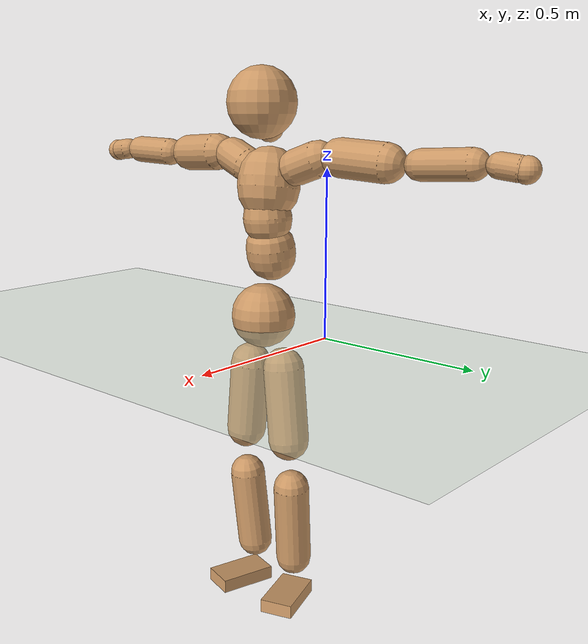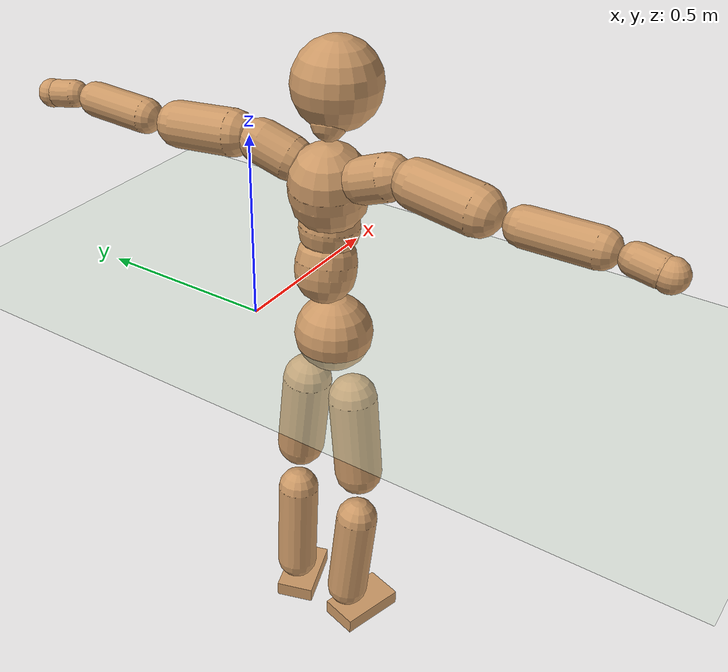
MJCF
<mujoco model="humanoid">
  <compiler coordinate="local"/>
  <default>
    <joint damping="0.0" armature="0.01" stiffness="0.0" limited="true"/>
    <geom conaffinity="1" condim="3" contype="7" margin="0.001" rgba="0.8 0.6 .4 1"/>
  </default>
  <asset>
    <texture type="skybox" builtin="gradient" rgb1=".4 .5 .6" rgb2="0 0 0" width="100" height="100"/>
    <texture builtin="flat" height="1278" mark="cross" markrgb="1 1 1" name="texgeom" random="0.01" rgb1="0.8 0.6 0.4" rgb2="0.8 0.6 0.4" type="cube" width="127"/>
    <texture builtin="checker" height="100" name="texplane" rgb1="0 0 0" rgb2="0.8 0.8 0.8" type="2d" width="100"/>
    <material name="MatPlane" reflectance="0.5" shininess="1" specular="1" texrepeat="60 60" texture="texplane"/>
    <material name="geom" texture="texgeom" texuniform="true"/>
  </asset>
  <worldbody>
    <light cutoff="100" diffuse="1 1 1" dir="-0 0 -1.3" directional="true" exponent="1" pos="0 0 1.3" specular=".1 .1 .1"/>
    <geom conaffinity="1" condim="3" name="floor" pos="0 0 0" rgba="0.8 0.9 0.8 1" size="100 100 .2" type="plane" material="MatPlane"/>
    <body name="Pelvis" pos="-0.0024 -0.2533 0.0318">
      <freejoint name="Pelvis"/>
      <geom type="sphere" contype="1" conaffinity="1" density="500" size="0.1011" pos="0.0000 0.0000 0.0000" name="Pelvis"/>
      <body name="L_Hip" pos="-0.0177 0.0616 -0.0852">
        <joint name="L_Hip_x" type="hinge" pos="0 0 0" axis="1 0 0" stiffness="800" damping="80" armature="0.02" range="-180.0000 180.0000"/>
        <joint name="L_Hip_y" type="hinge" pos="0 0 0" axis="0 1 0" stiffness="800" damping="80" armature="0.02" range="-180.0000 180.0000"/>
        <joint name="L_Hip_z" type="hinge" pos="0 0 0" axis="0 0 1" stiffness="800" damping="80" armature="0.02" range="-180.0000 180.0000"/>
        <geom type="capsule" contype="1" conaffinity="1" density="500" fromto="0.0016 0.0089 -0.0789 0.0064 0.0356 -0.3157" size="0.0652" name="L_Hip"/>
        <body name="L_Knee" pos="0.008 0.0445 -0.3946">
          <joint name="L_Knee_x" type="hinge" pos="0 0 0" axis="1 0 0" stiffness="800" damping="80" armature="0.02" range="-180.0000 180.0000"/>
          <joint name="L_Knee_y" type="hinge" pos="0 0 0" axis="0 1 0" stiffness="800" damping="80" armature="0.02" range="-180.0000 180.0000"/>
          <joint name="L_Knee_z" type="hinge" pos="0 0 0" axis="0 0 1" stiffness="800" damping="80" armature="0.02" range="-180.0000 180.0000"/>
          <geom type="capsule" contype="1" conaffinity="1" density="500" fromto="-0.0078 -0.0031 -0.0876 -0.0313 -0.0123 -0.3505" size="0.0577" name="L_Knee"/>
          <body name="L_Ankle" pos="-0.0391 -0.0154 -0.4381">
            <joint name="L_Ankle_x" type="hinge" pos="0 0 0" axis="1 0 0" stiffness="800" damping="80" armature="0.02" range="-180.0000 180.0000"/>
            <joint name="L_Ankle_y" type="hinge" pos="0 0 0" axis="0 1 0" stiffness="800" damping="80" armature="0.02" range="-180.0000 180.0000"/>
            <joint name="L_Ankle_z" type="hinge" pos="0 0 0" axis="0 0 1" stiffness="800" damping="80" armature="0.02" range="-180.0000 180.0000"/>
            <geom type="box" contype="1" conaffinity="1" density="500" pos="0.0626 0.0208 -0.0310" size="0.0915 0.0535 0.0222" quat="0.9871 0.0000 0.0000 0.1599" name="L_Ankle"/>
            <body name="L_Toe" pos="0.1252 0.0417 -0.0621">
              <joint name="L_Toe_x" type="hinge" pos="0 0 0" axis="1 0 0" stiffness="500" damping="50" armature="0.02" range="-180.0000 180.0000"/>
              <joint name="L_Toe_y" type="hinge" pos="0 0 0" axis="0 1 0" stiffness="500" damping="50" armature="0.02" range="-180.0000 180.0000"/>
              <joint name="L_Toe_z" type="hinge" pos="0 0 0" axis="0 0 1" stiffness="500" damping="50" armature="0.02" range="-180.0000 180.0000"/>
              <geom type="box" contype="1" conaffinity="1" density="500" pos="0.0000 0.0000 0.0303" size="0.0011 0.0026 0.0011" quat="0.9864 0.0000 0.0000 0.1646" name="L_Toe"/>
            </body>
          </body>
        </body>
      </body>
      <body name="R_Hip" pos="-0.0137 -0.063 -0.0932">
        <joint name="R_Hip_x" type="hinge" pos="0 0 0" axis="1 0 0" stiffness="800" damping="80" armature="0.02" range="-180.0000 180.0000"/>
        <joint name="R_Hip_y" type="hinge" pos="0 0 0" axis="0 1 0" stiffness="800" damping="80" armature="0.02" range="-180.0000 180.0000"/>
        <joint name="R_Hip_z" type="hinge" pos="0 0 0" axis="0 0 1" stiffness="800" damping="80" armature="0.02" range="-180.0000 180.0000"/>
        <geom type="capsule" contype="1" conaffinity="1" density="500" fromto="-0.0011 -0.0089 -0.0785 -0.0042 -0.0354 -0.3140" size="0.0646" name="R_Hip"/>
        <body name="R_Knee" pos="-0.0053 -0.0443 -0.3925">
          <joint name="R_Knee_x" type="hinge" pos="0 0 0" axis="1 0 0" stiffness="800" damping="80" armature="0.02" range="-180.0000 180.0000"/>
          <joint name="R_Knee_y" type="hinge" pos="0 0 0" axis="0 1 0" stiffness="800" damping="80" armature="0.02" range="-180.0000 180.0000"/>
          <joint name="R_Knee_z" type="hinge" pos="0 0 0" axis="0 0 1" stiffness="800" damping="80" armature="0.02" range="-180.0000 180.0000"/>
          <geom type="capsule" contype="1" conaffinity="1" density="500" fromto="-0.0073 0.0039 -0.0863 -0.0292 0.0157 -0.3452" size="0.0577" name="R_Knee"/>
          <body name="R_Ankle" pos="-0.0365 0.0196 -0.4315">
            <joint name="R_Ankle_x" type="hinge" pos="0 0 0" axis="1 0 0" stiffness="800" damping="80" armature="0.02" range="-180.0000 180.0000"/>
            <joint name="R_Ankle_y" type="hinge" pos="0 0 0" axis="0 1 0" stiffness="800" damping="80" armature="0.02" range="-180.0000 180.0000"/>
            <joint name="R_Ankle_z" type="hinge" pos="0 0 0" axis="0 0 1" stiffness="800" damping="80" armature="0.02" range="-180.0000 180.0000"/>
            <geom type="box" contype="1" conaffinity="1" density="500" pos="0.0668 -0.0186 -0.0316" size="0.0929 0.053 0.0223" quat="0.9908 0.0000 0.0000 -0.1352" name="R_Ankle"/>
            <body name="R_Toe" pos="0.1337 -0.0372 -0.0632">
              <joint name="R_Toe_x" type="hinge" pos="0 0 0" axis="1 0 0" stiffness="500" damping="50" armature="0.02" range="-180.0000 180.0000"/>
              <joint name="R_Toe_y" type="hinge" pos="0 0 0" axis="0 1 0" stiffness="500" damping="50" armature="0.02" range="-180.0000 180.0000"/>
              <joint name="R_Toe_z" type="hinge" pos="0 0 0" axis="0 0 1" stiffness="500" damping="50" armature="0.02" range="-180.0000 180.0000"/>
              <geom type="box" contype="1" conaffinity="1" density="500" pos="0.0000 0.0000 0.0317" size="0.0011 0.0026 0.0011" quat="0.9920 0.0000 0.0000 -0.1265" name="R_Toe"/>
            </body>
          </body>
        </body>
      </body>
      <body name="Torso" pos="-0.0419 0.0045 0.1292">
        <joint name="Torso_x" type="hinge" pos="0 0 0" axis="1 0 0" stiffness="1000" damping="100" armature="0.02" range="-180.0000 180.0000"/>
        <joint name="Torso_y" type="hinge" pos="0 0 0" axis="0 1 0" stiffness="1000" damping="100" armature="0.02" range="-180.0000 180.0000"/>
        <joint name="Torso_z" type="hinge" pos="0 0 0" axis="0 0 1" stiffness="1000" damping="100" armature="0.02" range="-180.0000 180.0000"/>
        <geom type="capsule" contype="1" conaffinity="1" density="500" fromto="0.0165 0.0029 0.0868 0.0110 0.0019 0.0579" size="0.077097" name="Torso"/>
        <body name="Spine" pos="0.0276 0.0048 0.1446">
          <joint name="Spine_x" type="hinge" pos="0 0 0" axis="1 0 0" stiffness="1000" damping="100" armature="0.02" range="-180.0000 180.0000"/>
          <joint name="Spine_y" type="hinge" pos="0 0 0" axis="0 1 0" stiffness="1000" damping="100" armature="0.02" range="-180.0000 180.0000"/>
          <joint name="Spine_z" type="hinge" pos="0 0 0" axis="0 0 1" stiffness="1000" damping="100" armature="0.02" range="-180.0000 180.0000"/>
          <geom type="capsule" contype="1" conaffinity="1" density="500" fromto="0.0019 -0.0014 0.0356 0.0013 -0.0010 0.0237" size="0.075702" name="Spine"/>
          <body name="Chest" pos="0.0032 -0.0024 0.0593">
            <joint name="Chest_x" type="hinge" pos="0 0 0" axis="1 0 0" stiffness="1000" damping="100" armature="0.02" range="-180.0000 180.0000"/>
            <joint name="Chest_y" type="hinge" pos="0 0 0" axis="0 1 0" stiffness="1000" damping="100" armature="0.02" range="-180.0000 180.0000"/>
            <joint name="Chest_z" type="hinge" pos="0 0 0" axis="0 0 1" stiffness="1000" damping="100" armature="0.02" range="-180.0000 180.0000"/>
            <geom type="capsule" contype="1" conaffinity="1" density="500" fromto="-0.0162 -0.0049 0.0915 -0.0108 -0.0032 0.0610" size="0.097185" name="Chest"/>
            <body name="Neck" pos="-0.0363 -0.0133 0.2222">
              <joint name="Neck_x" type="hinge" pos="0 0 0" axis="1 0 0" stiffness="500" damping="50" armature="0.02" range="-180.0000 180.0000"/>
              <joint name="Neck_y" type="hinge" pos="0 0 0" axis="0 1 0" stiffness="500" damping="50" armature="0.02" range="-180.0000 180.0000"/>
              <joint name="Neck_z" type="hinge" pos="0 0 0" axis="0 0 1" stiffness="500" damping="50" armature="0.02" range="-180.0000 180.0000"/>
              <geom type="capsule" contype="1" conaffinity="1" density="500" fromto="0.0105 0.0021 0.0184 0.0420 0.0084 0.0737" size="0.043152" name="Neck"/>
              <body name="Head" pos="0.0525 0.0104 0.0921">
                <joint name="Head_x" type="hinge" pos="0 0 0" axis="1 0 0" stiffness="500" damping="50" armature="0.02" range="-180.0000 180.0000"/>
                <joint name="Head_y" type="hinge" pos="0 0 0" axis="0 1 0" stiffness="500" damping="50" armature="0.02" range="-180.0000 180.0000"/>
                <joint name="Head_z" type="hinge" pos="0 0 0" axis="0 0 1" stiffness="500" damping="50" armature="0.02" range="-180.0000 180.0000"/>
                <geom type="sphere" contype="1" conaffinity="1" density="500" size="0.1069" pos="0.0000 0.0000 0.0000" name="Head"/>
              </body>
            </body>
            <body name="L_Thorax" pos="-0.0196 0.0723 0.1187">
              <joint name="L_Thorax_x" type="hinge" pos="0 0 0" axis="1 0 0" stiffness="500" damping="50" armature="0.02" range="-180.0000 180.0000"/>
              <joint name="L_Thorax_y" type="hinge" pos="0 0 0" axis="0 1 0" stiffness="500" damping="50" armature="0.02" range="-180.0000 180.0000"/>
              <joint name="L_Thorax_z" type="hinge" pos="0 0 0" axis="0 0 1" stiffness="500" damping="50" armature="0.02" range="-180.0000 180.0000"/>
              <geom type="capsule" contype="1" conaffinity="1" density="500" fromto="-0.0039 0.0248 0.0091 -0.0155 0.0991 0.0363" size="0.0547" name="L_Thorax"/>
              <body name="L_Shoulder" pos="-0.0194 0.1239 0.0454">
                <joint name="L_Shoulder_x" type="hinge" pos="0 0 0" axis="1 0 0" stiffness="500" damping="50" armature="0.02" range="-720.0000 720.0000"/>
                <joint name="L_Shoulder_y" type="hinge" pos="0 0 0" axis="0 1 0" stiffness="500" damping="50" armature="0.02" range="-720.0000 720.0000"/>
                <joint name="L_Shoulder_z" type="hinge" pos="0 0 0" axis="0 0 1" stiffness="500" damping="50" armature="0.02" range="-720.0000 720.0000"/>
                <geom type="capsule" contype="1" conaffinity="1" density="500" fromto="-0.0049 0.0511 -0.0031 -0.0194 0.2045 -0.0126" size="0.0574" name="L_Shoulder"/>
                <body name="L_Elbow" pos="-0.0243 0.2556 -0.0157">
                  <joint name="L_Elbow_x" type="hinge" pos="0 0 0" axis="1 0 0" stiffness="500" damping="50" armature="0.02" range="-720.0000 720.0000"/>
                  <joint name="L_Elbow_y" type="hinge" pos="0 0 0" axis="0 1 0" stiffness="500" damping="50" armature="0.02" range="-720.0000 720.0000"/>
                  <joint name="L_Elbow_z" type="hinge" pos="0 0 0" axis="0 0 1" stiffness="500" damping="50" armature="0.02" range="-720.0000 720.0000"/>
                  <geom type="capsule" contype="1" conaffinity="1" density="500" fromto="-0.0013 0.0537 0.0027 -0.0051 0.2147 0.0108" size="0.0441" name="L_Elbow"/>
                  <body name="L_Wrist" pos="-0.0064 0.2684 0.0135">
                    <joint name="L_Wrist_x" type="hinge" pos="0 0 0" axis="1 0 0" stiffness="300" damping="30" armature="0.02" range="-180.0000 180.0000"/>
                    <joint name="L_Wrist_y" type="hinge" pos="0 0 0" axis="0 1 0" stiffness="300" damping="30" armature="0.02" range="-180.0000 180.0000"/>
                    <joint name="L_Wrist_z" type="hinge" pos="0 0 0" axis="0 0 1" stiffness="300" damping="30" armature="0.02" range="-180.0000 180.0000"/>
                    <geom type="capsule" contype="1" conaffinity="1" density="500" fromto="-0.0032 0.0176 -0.0022 -0.0126 0.0705 -0.0088" size="0.0349" name="L_Wrist"/>
                    <body name="L_Hand" pos="-0.0158 0.0882 -0.0109">
                      <joint name="L_Hand_x" type="hinge" pos="0 0 0" axis="1 0 0" stiffness="300" damping="30" armature="0.02" range="-180.0000 180.0000"/>
                      <joint name="L_Hand_y" type="hinge" pos="0 0 0" axis="0 1 0" stiffness="300" damping="30" armature="0.02" range="-180.0000 180.0000"/>
                      <joint name="L_Hand_z" type="hinge" pos="0 0 0" axis="0 0 1" stiffness="300" damping="30" armature="0.02" range="-180.0000 180.0000"/>
                      <geom type="sphere" contype="1" conaffinity="1" density="500" size="0.0363" pos="0.0000 0.0000 0.0000" name="L_Hand"/>
                    </body>
                  </body>
                </body>
              </body>
            </body>
            <body name="R_Thorax" pos="-0.0253 -0.0834 0.1167">
              <joint name="R_Thorax_x" type="hinge" pos="0 0 0" axis="1 0 0" stiffness="500" damping="50" armature="0.02" range="-180.0000 180.0000"/>
              <joint name="R_Thorax_y" type="hinge" pos="0 0 0" axis="0 1 0" stiffness="500" damping="50" armature="0.02" range="-180.0000 180.0000"/>
              <joint name="R_Thorax_z" type="hinge" pos="0 0 0" axis="0 0 1" stiffness="500" damping="50" armature="0.02" range="-180.0000 180.0000"/>
              <geom type="capsule" contype="1" conaffinity="1" density="500" fromto="-0.0018 -0.0229 0.0094 -0.0071 -0.0916 0.0378" size="0.0547" name="R_Thorax"/>
              <body name="R_Shoulder" pos="-0.0088 -0.1145 0.0472">
                <joint name="R_Shoulder_x" type="hinge" pos="0 0 0" axis="1 0 0" stiffness="500" damping="50" armature="0.02" range="-720.0000 720.0000"/>
                <joint name="R_Shoulder_y" type="hinge" pos="0 0 0" axis="0 1 0" stiffness="500" damping="50" armature="0.02" range="-720.0000 720.0000"/>
                <joint name="R_Shoulder_z" type="hinge" pos="0 0 0" axis="0 0 1" stiffness="500" damping="50" armature="0.02" range="-720.0000 720.0000"/>
                <geom type="capsule" contype="1" conaffinity="1" density="500" fromto="-0.0067 -0.0522 -0.0029 -0.0268 -0.2089 -0.0116" size="0.058" name="R_Shoulder"/>
                <body name="R_Elbow" pos="-0.0335 -0.2611 -0.0145">
                  <joint name="R_Elbow_x" type="hinge" pos="0 0 0" axis="1 0 0" stiffness="500" damping="50" armature="0.02" range="-720.0000 720.0000"/>
                  <joint name="R_Elbow_y" type="hinge" pos="0 0 0" axis="0 1 0" stiffness="500" damping="50" armature="0.02" range="-720.0000 720.0000"/>
                  <joint name="R_Elbow_z" type="hinge" pos="0 0 0" axis="0 0 1" stiffness="500" damping="50" armature="0.02" range="-720.0000 720.0000"/>
                  <geom type="capsule" contype="1" conaffinity="1" density="500" fromto="-0.0012 -0.0542 0.0012 -0.0047 -0.2168 0.0048" size="0.0445" name="R_Elbow"/>
                  <body name="R_Wrist" pos="-0.0058 -0.271 0.006">
                    <joint name="R_Wrist_x" type="hinge" pos="0 0 0" axis="1 0 0" stiffness="300" damping="30" armature="0.02" range="-180.0000 180.0000"/>
                    <joint name="R_Wrist_y" type="hinge" pos="0 0 0" axis="0 1 0" stiffness="300" damping="30" armature="0.02" range="-180.0000 180.0000"/>
                    <joint name="R_Wrist_z" type="hinge" pos="0 0 0" axis="0 0 1" stiffness="300" damping="30" armature="0.02" range="-180.0000 180.0000"/>
                    <geom type="capsule" contype="1" conaffinity="1" density="500" fromto="-0.0020 -0.0180 -0.0018 -0.0081 -0.0721 -0.0070" size="0.0354" name="R_Wrist"/>
                    <body name="R_Hand" pos="-0.0102 -0.0902 -0.0088">
                      <joint name="R_Hand_x" type="hinge" pos="0 0 0" axis="1 0 0" stiffness="300" damping="30" armature="0.02" range="-180.0000 180.0000"/>
                      <joint name="R_Hand_y" type="hinge" pos="0 0 0" axis="0 1 0" stiffness="300" damping="30" armature="0.02" range="-180.0000 180.0000"/>
                      <joint name="R_Hand_z" type="hinge" pos="0 0 0" axis="0 0 1" stiffness="300" damping="30" armature="0.02" range="-180.0000 180.0000"/>
                      <geom type="sphere" contype="1" conaffinity="1" density="500" size="0.0367" pos="0.0000 0.0000 0.0000" name="R_Hand"/>
                    </body>
                  </body>
                </body>
              </body>
            </body>
          </body>
        </body>
      </body>
    </body>
  </worldbody>
  <actuator>
    <motor name="L_Hip_x" joint="L_Hip_x" gear="500"/>
    <motor name="L_Hip_y" joint="L_Hip_y" gear="500"/>
    <motor name="L_Hip_z" joint="L_Hip_z" gear="500"/>
    <motor name="L_Knee_x" joint="L_Knee_x" gear="500"/>
    <motor name="L_Knee_y" joint="L_Knee_y" gear="500"/>
    <motor name="L_Knee_z" joint="L_Knee_z" gear="500"/>
    <motor name="L_Ankle_x" joint="L_Ankle_x" gear="500"/>
    <motor name="L_Ankle_y" joint="L_Ankle_y" gear="500"/>
    <motor name="L_Ankle_z" joint="L_Ankle_z" gear="500"/>
    <motor name="L_Toe_x" joint="L_Toe_x" gear="500"/>
    <motor name="L_Toe_y" joint="L_Toe_y" gear="500"/>
    <motor name="L_Toe_z" joint="L_Toe_z" gear="500"/>
    <motor name="R_Hip_x" joint="R_Hip_x" gear="500"/>
    <motor name="R_Hip_y" joint="R_Hip_y" gear="500"/>
    <motor name="R_Hip_z" joint="R_Hip_z" gear="500"/>
    <motor name="R_Knee_x" joint="R_Knee_x" gear="500"/>
    <motor name="R_Knee_y" joint="R_Knee_y" gear="500"/>
    <motor name="R_Knee_z" joint="R_Knee_z" gear="500"/>
    <motor name="R_Ankle_x" joint="R_Ankle_x" gear="500"/>
    <motor name="R_Ankle_y" joint="R_Ankle_y" gear="500"/>
    <motor name="R_Ankle_z" joint="R_Ankle_z" gear="500"/>
    <motor name="R_Toe_x" joint="R_Toe_x" gear="500"/>
    <motor name="R_Toe_y" joint="R_Toe_y" gear="500"/>
    <motor name="R_Toe_z" joint="R_Toe_z" gear="500"/>
    <motor name="Torso_x" joint="Torso_x" gear="500"/>
    <motor name="Torso_y" joint="Torso_y" gear="500"/>
    <motor name="Torso_z" joint="Torso_z" gear="500"/>
    <motor name="Spine_x" joint="Spine_x" gear="500"/>
    <motor name="Spine_y" joint="Spine_y" gear="500"/>
    <motor name="Spine_z" joint="Spine_z" gear="500"/>
    <motor name="Chest_x" joint="Chest_x" gear="500"/>
    <motor name="Chest_y" joint="Chest_y" gear="500"/>
    <motor name="Chest_z" joint="Chest_z" gear="500"/>
    <motor name="Neck_x" joint="Neck_x" gear="500"/>
    <motor name="Neck_y" joint="Neck_y" gear="500"/>
    <motor name="Neck_z" joint="Neck_z" gear="500"/>
    <motor name="Head_x" joint="Head_x" gear="500"/>
    <motor name="Head_y" joint="Head_y" gear="500"/>
    <motor name="Head_z" joint="Head_z" gear="500"/>
    <motor name="L_Thorax_x" joint="L_Thorax_x" gear="500"/>
    <motor name="L_Thorax_y" joint="L_Thorax_y" gear="500"/>
    <motor name="L_Thorax_z" joint="L_Thorax_z" gear="500"/>
    <motor name="L_Shoulder_x" joint="L_Shoulder_x" gear="500"/>
    <motor name="L_Shoulder_y" joint="L_Shoulder_y" gear="500"/>
    <motor name="L_Shoulder_z" joint="L_Shoulder_z" gear="500"/>
    <motor name="L_Elbow_x" joint="L_Elbow_x" gear="500"/>
    <motor name="L_Elbow_y" joint="L_Elbow_y" gear="500"/>
    <motor name="L_Elbow_z" joint="L_Elbow_z" gear="500"/>
    <motor name="L_Wrist_x" joint="L_Wrist_x" gear="500"/>
    <motor name="L_Wrist_y" joint="L_Wrist_y" gear="500"/>
    <motor name="L_Wrist_z" joint="L_Wrist_z" gear="500"/>
    <motor name="L_Hand_x" joint="L_Hand_x" gear="500"/>
    <motor name="L_Hand_y" joint="L_Hand_y" gear="500"/>
    <motor name="L_Hand_z" joint="L_Hand_z" gear="500"/>
    <motor name="R_Thorax_x" joint="R_Thorax_x" gear="500"/>
    <motor name="R_Thorax_y" joint="R_Thorax_y" gear="500"/>
    <motor name="R_Thorax_z" joint="R_Thorax_z" gear="500"/>
    <motor name="R_Shoulder_x" joint="R_Shoulder_x" gear="500"/>
    <motor name="R_Shoulder_y" joint="R_Shoulder_y" gear="500"/>
    <motor name="R_Shoulder_z" joint="R_Shoulder_z" gear="500"/>
    <motor name="R_Elbow_x" joint="R_Elbow_x" gear="500"/>
    <motor name="R_Elbow_y" joint="R_Elbow_y" gear="500"/>
    <motor name="R_Elbow_z" joint="R_Elbow_z" gear="500"/>
    <motor name="R_Wrist_x" joint="R_Wrist_x" gear="500"/>
    <motor name="R_Wrist_y" joint="R_Wrist_y" gear="500"/>
    <motor name="R_Wrist_z" joint="R_Wrist_z" gear="500"/>
    <motor name="R_Hand_x" joint="R_Hand_x" gear="500"/>
    <motor name="R_Hand_y" joint="R_Hand_y" gear="500"/>
    <motor name="R_Hand_z" joint="R_Hand_z" gear="500"/>
  </actuator>
  <contact>
    <exclude body1="Torso" body2="Chest"/>
    <exclude body1="Head" body2="Chest"/>
    <exclude body1="R_Knee" body2="R_Toe"/>
    <exclude body1="R_Knee" body2="L_Ankle"/>
    <exclude body1="R_Knee" body2="L_Toe"/>
    <exclude body1="L_Knee" body2="L_Toe"/>
    <exclude body1="L_Knee" body2="R_Ankle"/>
    <exclude body1="L_Knee" body2="R_Toe"/>
    <exclude body1="L_Shoulder" body2="Chest"/>
    <exclude body1="R_Shoulder" body2="Chest"/>
  </contact>
  <sensor/>
  <size njmax="700" nconmax="700"/>
</mujoco>
